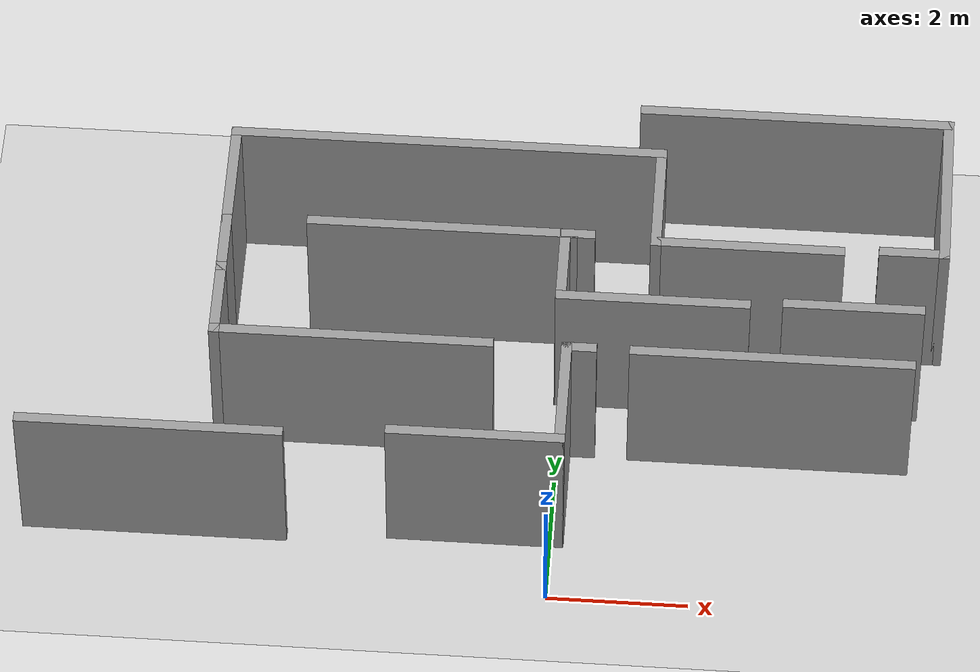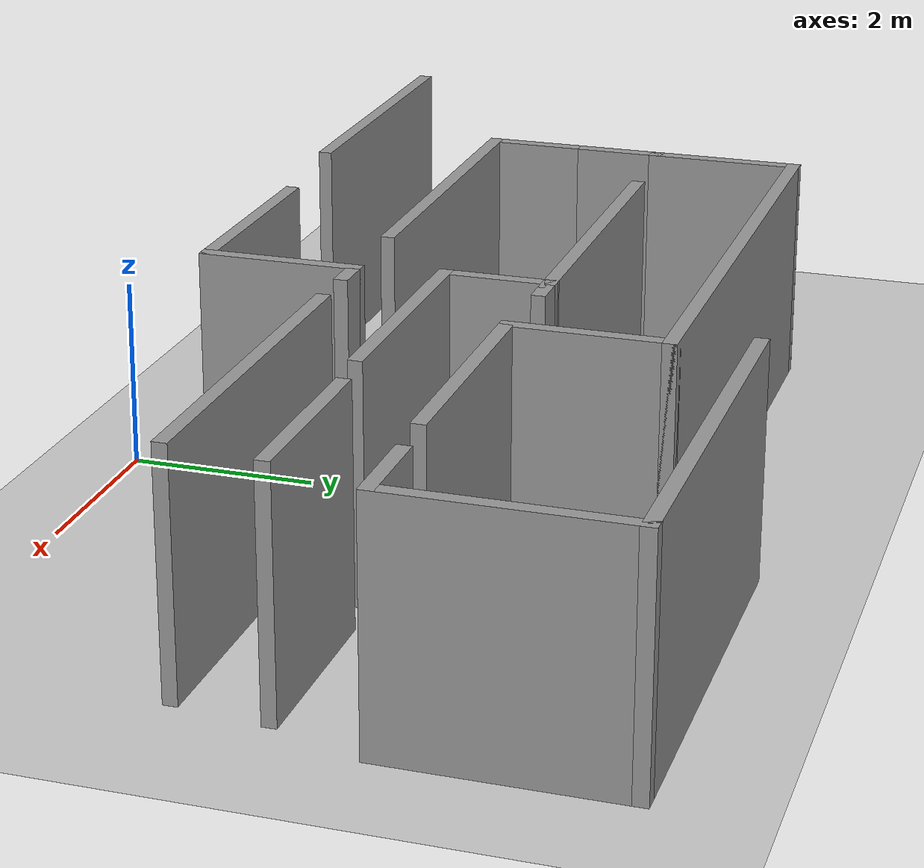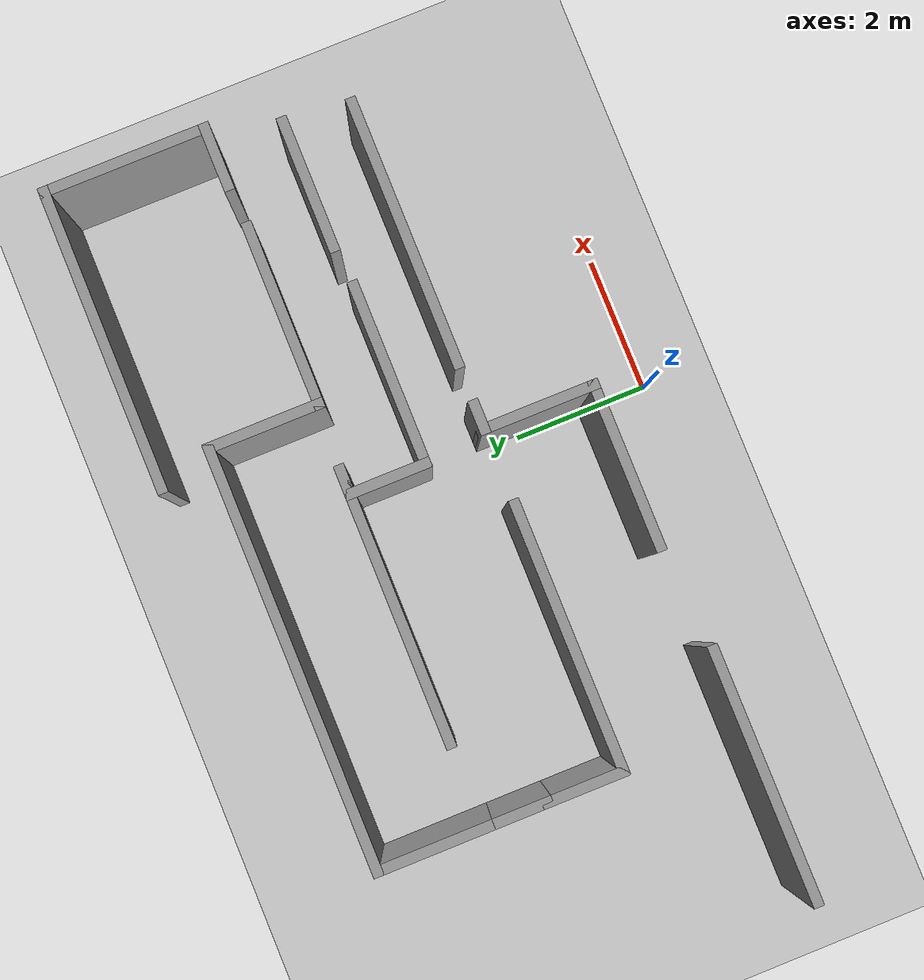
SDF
<sdf version="1.7">
 <world name="default">
  <light name="sun" type="directional">
   <pose>0 0 10 0 -0 0</pose>
   <diffuse>0.8 0.8 0.8 1</diffuse>
   <specular>0.2 0.2 0.2 1</specular>
   <attenuation>
    <range>1000</range>
    <constant>0.9</constant>
    <linear>0.01</linear>
    <quadratic>0.001</quadratic>
   </attenuation>
   <direction>-0.5 0.1 -0.9</direction>
   <spot><inner_angle>0</inner_angle><outer_angle>0</outer_angle><falloff>0</falloff></spot>
  </light>
  <model name="ground_plane">
   <static>1</static>
   <link name="link">
    <collision name="collision">
     <geometry><plane><normal>0 0 1</normal><size>100 100</size></plane></geometry>
     <surface><friction><ode><mu>100</mu><mu2>50</mu2></ode></friction></surface>
    </collision>
    <visual name="visual">
     <cast_shadows>0</cast_shadows>
     <geometry><plane><normal>0 0 1</normal><size>100 100</size></plane></geometry>
     <material>
      <script><uri>file://media/materials/scripts/gazebo.material</uri><name>Gazebo/Grey</name></script>
     </material>
    </visual>
   </link>
  </model>
  <gravity>0 0 -9.8</gravity>
  <magnetic_field>6e-06 2.3e-05 -4.2e-05</magnetic_field>
  <atmosphere type="adiabatic"/>
  <physics type="ode">
   <max_step_size>0.001</max_step_size>
   <real_time_factor>1</real_time_factor>
   <real_time_update_rate>1000</real_time_update_rate>
  </physics>
  <scene><ambient>0.4 0.4 0.4 1</ambient><background>0.7 0.7 0.7 1</background><shadows>1</shadows></scene>
  <audio><device>default</device></audio>
  <spherical_coordinates>
   <surface_model>EARTH_WGS84</surface_model>
   <latitude_deg>0</latitude_deg>
   <longitude_deg>0</longitude_deg>
   <elevation>0</elevation>
   <heading_deg>0</heading_deg>
  </spherical_coordinates>
  <model name="maze">
   <pose>-1.02282 3.85789 0 0 -0 0</pose>
   <link name="Wall_10">
    <collision name="Wall_10_Collision">
     <geometry><box><size>1.25 0.15 2.5</size></box></geometry>
     <pose>0 0 1.25 0 -0 0</pose>
    </collision>
    <visual name="Wall_10_Visual">
     <pose>0 0 1.25 0 -0 0</pose>
     <geometry><box><size>1.25 0.15 2.5</size></box></geometry>
     <material>
      <script><uri>file://media/materials/scripts/gazebo.material</uri><name>Gazebo/Grey</name></script>
      <ambient>1 1 1 1</ambient>
     </material>
     <meta><layer>0</layer></meta>
    </visual>
    <pose>-3.81239 -0.752218 0 0 -0 1.5708</pose>
   </link>
   <link name="Wall_11">
    <collision name="Wall_11_Collision">
     <geometry><box><size>1 0.15 2.5</size></box></geometry>
     <pose>0 0 1.25 0 -0 0</pose>
    </collision>
    <visual name="Wall_11_Visual">
     <pose>0 0 1.25 0 -0 0</pose>
     <geometry><box><size>1 0.15 2.5</size></box></geometry>
     <material>
      <script><uri>file://media/materials/scripts/gazebo.material</uri><name>Gazebo/Grey</name></script>
      <ambient>1 1 1 1</ambient>
     </material>
     <meta><layer>0</layer></meta>
    </visual>
    <pose>-3.81239 0.222782 0 0 -0 1.5708</pose>
   </link>
   <link name="Wall_13">
    <collision name="Wall_13_Collision">
     <geometry><box><size>3.75 0.15 2.5</size></box></geometry>
     <pose>0 0 1.25 0 -0 0</pose>
    </collision>
    <visual name="Wall_13_Visual">
     <pose>0 0 1.25 0 -0 0</pose>
     <geometry><box><size>3.75 0.15 2.5</size></box></geometry>
     <material>
      <script><uri>file://media/materials/scripts/gazebo.material</uri><name>Gazebo/Grey</name></script>
      <ambient>1 1 1 1</ambient>
     </material>
     <meta><layer>0</layer></meta>
    </visual>
    <pose>-0.799277 0.710145 0 0 -0 0</pose>
   </link>
   <link name="Wall_14">
    <collision name="Wall_14_Collision">
     <geometry><box><size>0.25 0.15 2.5</size></box></geometry>
     <pose>0 0 1.25 0 -0 0</pose>
    </collision>
    <visual name="Wall_14_Visual">
     <pose>0 0 1.25 0 -0 0</pose>
     <geometry><box><size>0.25 0.15 2.5</size></box></geometry>
     <material>
      <script><uri>file://media/materials/scripts/gazebo.material</uri><name>Gazebo/Grey</name></script>
      <ambient>1 1 1 1</ambient>
     </material>
     <meta><layer>0</layer></meta>
    </visual>
    <pose>1.05072 0.710145 0 0 -0 0</pose>
   </link>
   <link name="Wall_15">
    <collision name="Wall_15_Collision">
     <geometry><box><size>0.25 0.15 2.5</size></box></geometry>
     <pose>0 0 1.25 0 -0 0</pose>
    </collision>
    <visual name="Wall_15_Visual">
     <pose>0 0 1.25 0 -0 0</pose>
     <geometry><box><size>0.25 0.15 2.5</size></box></geometry>
     <material>
      <script><uri>file://media/materials/scripts/gazebo.material</uri><name>Gazebo/Grey</name></script>
      <ambient>1 1 1 1</ambient>
     </material>
     <meta><layer>0</layer></meta>
    </visual>
    <pose>1.05072 0.710145 0 0 -0 3.14159</pose>
   </link>
   <link name="Wall_16">
    <collision name="Wall_16_Collision">
     <geometry><box><size>0.5 0.15 2.5</size></box></geometry>
     <pose>0 0 1.25 0 -0 0</pose>
    </collision>
    <visual name="Wall_16_Visual">
     <pose>0 0 1.25 0 -0 0</pose>
     <geometry><box><size>0.5 0.15 2.5</size></box></geometry>
     <material>
      <script><uri>file://media/materials/scripts/gazebo.material</uri><name>Gazebo/Grey</name></script>
      <ambient>1 1 1 1</ambient>
     </material>
     <meta><layer>0</layer></meta>
    </visual>
    <pose>1.17572 0.710145 0 0 -0 0</pose>
   </link>
   <link name="Wall_18">
    <collision name="Wall_18_Collision">
     <geometry><box><size>1.25 0.15 2.5</size></box></geometry>
     <pose>0 0 1.25 0 -0 0</pose>
    </collision>
    <visual name="Wall_18_Visual">
     <pose>0 0 1.25 0 -0 0</pose>
     <geometry><box><size>1.25 0.15 2.5</size></box></geometry>
     <material>
      <script><uri>file://media/materials/scripts/gazebo.material</uri><name>Gazebo/Grey</name></script>
      <ambient>1 1 1 1</ambient>
     </material>
     <meta><layer>0</layer></meta>
    </visual>
    <pose>1.00072 0.160145 0 0 -0 -1.5708</pose>
   </link>
   <link name="Wall_21">
    <collision name="Wall_21_Collision">
     <geometry><box><size>1.75 0.15 2.5</size></box></geometry>
     <pose>0 0 1.25 0 -0 0</pose>
    </collision>
    <visual name="Wall_21_Visual">
     <pose>0 0 1.25 0 -0 0</pose>
     <geometry><box><size>1.75 0.15 2.5</size></box></geometry>
     <material>
      <script><uri>file://media/materials/scripts/gazebo.material</uri><name>Gazebo/Grey</name></script>
      <ambient>1 1 1 1</ambient>
     </material>
     <meta><layer>0</layer></meta>
    </visual>
    <pose>-3.81239 1.44778 0 0 -0 1.5708</pose>
   </link>
   <link name="Wall_22">
    <collision name="Wall_22_Collision">
     <geometry><box><size>6.25 0.15 2.5</size></box></geometry>
     <pose>0 0 1.25 0 -0 0</pose>
    </collision>
    <visual name="Wall_22_Visual">
     <pose>0 0 1.25 0 -0 0</pose>
     <geometry><box><size>6.25 0.15 2.5</size></box></geometry>
     <material>
      <script><uri>file://media/materials/scripts/gazebo.material</uri><name>Gazebo/Grey</name></script>
      <ambient>1 1 1 1</ambient>
     </material>
     <meta><layer>0</layer></meta>
    </visual>
    <pose>-0.762388 2.24778 0 0 -0 0</pose>
   </link>
   <link name="Wall_24">
    <collision name="Wall_24_Collision">
     <geometry><box><size>1.75 0.15 2.5</size></box></geometry>
     <pose>0 0 1.25 0 -0 0</pose>
    </collision>
    <visual name="Wall_24_Visual">
     <pose>0 0 1.25 0 -0 0</pose>
     <geometry><box><size>1.75 0.15 2.5</size></box></geometry>
     <material>
      <script><uri>file://media/materials/scripts/gazebo.material</uri><name>Gazebo/Grey</name></script>
      <ambient>1 1 1 1</ambient>
     </material>
     <meta><layer>0</layer></meta>
    </visual>
    <pose>2.28761 1.44778 0 0 -0 -1.5708</pose>
   </link>
   <link name="Wall_26">
    <collision name="Wall_26_Collision">
     <geometry><box><size>0.5 0.15 2.5</size></box></geometry>
     <pose>0 0 1.25 0 -0 0</pose>
    </collision>
    <visual name="Wall_26_Visual">
     <pose>0 0 1.25 0 -0 0</pose>
     <geometry><box><size>0.5 0.15 2.5</size></box></geometry>
     <material>
      <script><uri>file://media/materials/scripts/gazebo.material</uri><name>Gazebo/Grey</name></script>
      <ambient>1 1 1 1</ambient>
     </material>
     <meta><layer>0</layer></meta>
    </visual>
    <pose>1.31356 -1.29823 0 0 -0 0</pose>
   </link>
   <link name="Wall_28">
    <collision name="Wall_28_Collision">
     <geometry><box><size>4 0.15 2.5</size></box></geometry>
     <pose>0 0 1.25 0 -0 0</pose>
    </collision>
    <visual name="Wall_28_Visual">
     <pose>0 0 1.25 0 -0 0</pose>
     <geometry><box><size>4 0.15 2.5</size></box></geometry>
     <material>
      <script><uri>file://media/materials/scripts/gazebo.material</uri><name>Gazebo/Grey</name></script>
      <ambient>1 1 1 1</ambient>
     </material>
     <meta><layer>0</layer></meta>
    </visual>
    <pose>4.02124 -1.30222 0 0 -0 0</pose>
   </link>
   <link name="Wall_30">
    <collision name="Wall_30_Collision">
     <geometry><box><size>2.75 0.15 2.5</size></box></geometry>
     <pose>0 0 1.25 0 -0 0</pose>
    </collision>
    <visual name="Wall_30_Visual">
     <pose>0 0 1.25 0 -0 0</pose>
     <geometry><box><size>2.75 0.15 2.5</size></box></geometry>
     <material>
      <script><uri>file://media/materials/scripts/gazebo.material</uri><name>Gazebo/Grey</name></script>
      <ambient>1 1 1 1</ambient>
     </material>
     <meta><layer>0</layer></meta>
    </visual>
    <pose>2.30072 -0.389855 0 0 -0 0</pose>
   </link>
   <link name="Wall_32">
    <collision name="Wall_32_Collision">
     <geometry><box><size>2 0.15 2.5</size></box></geometry>
     <pose>0 0 1.25 0 -0 0</pose>
    </collision>
    <visual name="Wall_32_Visual">
     <pose>0 0 1.25 0 -0 0</pose>
     <geometry><box><size>2 0.15 2.5</size></box></geometry>
     <material>
      <script><uri>file://media/materials/scripts/gazebo.material</uri><name>Gazebo/Grey</name></script>
      <ambient>1 1 1 1</ambient>
     </material>
     <meta><layer>0</layer></meta>
    </visual>
    <pose>5.12612 -0.330733 0 0 -0 0</pose>
   </link>
   <link name="Wall_34">
    <collision name="Wall_34_Collision">
     <geometry><box><size>2.75 0.15 2.5</size></box></geometry>
     <pose>0 0 1.25 0 -0 0</pose>
    </collision>
    <visual name="Wall_34_Visual">
     <pose>0 0 1.25 0 -0 0</pose>
     <geometry><box><size>2.75 0.15 2.5</size></box></geometry>
     <material>
      <script><uri>file://media/materials/scripts/gazebo.material</uri><name>Gazebo/Grey</name></script>
      <ambient>1 1 1 1</ambient>
     </material>
     <meta><layer>0</layer></meta>
    </visual>
    <pose>3.58761 0.647782 0 0 -0 0</pose>
   </link>
   <link name="Wall_36">
    <collision name="Wall_36_Collision">
     <geometry><box><size>1 0.15 2.5</size></box></geometry>
     <pose>0 0 1.25 0 -0 0</pose>
    </collision>
    <visual name="Wall_36_Visual">
     <pose>0 0 1.25 0 -0 0</pose>
     <geometry><box><size>1 0.15 2.5</size></box></geometry>
     <material>
      <script><uri>file://media/materials/scripts/gazebo.material</uri><name>Gazebo/Grey</name></script>
      <ambient>1 1 1 1</ambient>
     </material>
     <meta><layer>0</layer></meta>
    </visual>
    <pose>5.94457 0.687014 0 0 -0 0</pose>
   </link>
   <link name="Wall_37">
    <collision name="Wall_37_Collision">
     <geometry><box><size>2.5 0.15 2.5</size></box></geometry>
     <pose>0 0 1.25 0 -0 0</pose>
    </collision>
    <visual name="Wall_37_Visual">
     <pose>0 0 1.25 0 -0 0</pose>
     <geometry><box><size>2.5 0.15 2.5</size></box></geometry>
     <material>
      <script><uri>file://media/materials/scripts/gazebo.material</uri><name>Gazebo/Grey</name></script>
      <ambient>1 1 1 1</ambient>
     </material>
     <meta><layer>0</layer></meta>
    </visual>
    <pose>6.36957 1.86201 0 0 -0 1.5708</pose>
   </link>
   <link name="Wall_38">
    <collision name="Wall_38_Collision">
     <geometry><box><size>4.5 0.15 2.5</size></box></geometry>
     <pose>0 0 1.25 0 -0 0</pose>
    </collision>
    <visual name="Wall_38_Visual">
     <pose>0 0 1.25 0 -0 0</pose>
     <geometry><box><size>4.5 0.15 2.5</size></box></geometry>
     <material>
      <script><uri>file://media/materials/scripts/gazebo.material</uri><name>Gazebo/Grey</name></script>
      <ambient>1 1 1 1</ambient>
     </material>
     <meta><layer>0</layer></meta>
    </visual>
    <pose>4.19457 3.03701 0 0 -0 3.14159</pose>
   </link>
   <link name="Wall_4">
    <collision name="Wall_4_Collision">
     <geometry><box><size>3.75 0.15 2.5</size></box></geometry>
     <pose>0 0 1.25 0 -0 0</pose>
    </collision>
    <visual name="Wall_4_Visual">
     <pose>0 0 1.25 0 -0 0</pose>
     <geometry><box><size>3.75 0.15 2.5</size></box></geometry>
     <material>
      <script><uri>file://media/materials/scripts/gazebo.material</uri><name>Gazebo/Grey</name></script>
      <ambient>1 1 1 1</ambient>
     </material>
     <meta><layer>0</layer></meta>
    </visual>
    <pose>-4.56957 -3.03701 0 0 -0 0</pose>
   </link>
   <link name="Wall_6">
    <collision name="Wall_6_Collision">
     <geometry><box><size>2.5 0.15 2.5</size></box></geometry>
     <pose>0 0 1.25 0 -0 0</pose>
    </collision>
    <visual name="Wall_6_Visual">
     <pose>0 0 1.25 0 -0 0</pose>
     <geometry><box><size>2.5 0.15 2.5</size></box></geometry>
     <material>
      <script><uri>file://media/materials/scripts/gazebo.material</uri><name>Gazebo/Grey</name></script>
      <ambient>1 1 1 1</ambient>
     </material>
     <meta><layer>0</layer></meta>
    </visual>
    <pose>-0.036441 -2.89823 0 0 -0 0</pose>
   </link>
   <link name="Wall_7">
    <collision name="Wall_7_Collision">
     <geometry><box><size>1.75 0.15 2.5</size></box></geometry>
     <pose>0 0 1.25 0 -0 0</pose>
    </collision>
    <visual name="Wall_7_Visual">
     <pose>0 0 1.25 0 -0 0</pose>
     <geometry><box><size>1.75 0.15 2.5</size></box></geometry>
     <material>
      <script><uri>file://media/materials/scripts/gazebo.material</uri><name>Gazebo/Grey</name></script>
      <ambient>1 1 1 1</ambient>
     </material>
     <meta><layer>0</layer></meta>
    </visual>
    <pose>1.13856 -2.09823 0 0 -0 1.5708</pose>
   </link>
   <link name="Wall_9">
    <collision name="Wall_9_Collision">
     <geometry><box><size>4 0.15 2.5</size></box></geometry>
     <pose>0 0 1.25 0 -0 0</pose>
    </collision>
    <visual name="Wall_9_Visual">
     <pose>0 0 1.25 0 -0 0</pose>
     <geometry><box><size>4 0.15 2.5</size></box></geometry>
     <material>
      <script><uri>file://media/materials/scripts/gazebo.material</uri><name>Gazebo/Grey</name></script>
      <ambient>1 1 1 1</ambient>
     </material>
     <meta><layer>0</layer></meta>
    </visual>
    <pose>-1.88739 -1.30222 0 0 -0 3.14159</pose>
   </link>
   <static>1</static>
  </model>
 </world>
</sdf>
